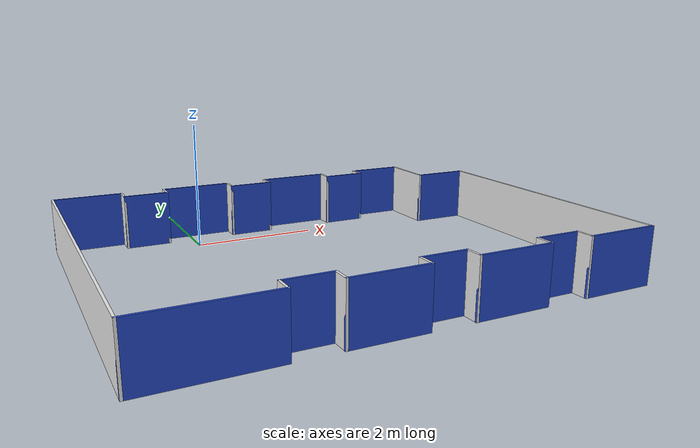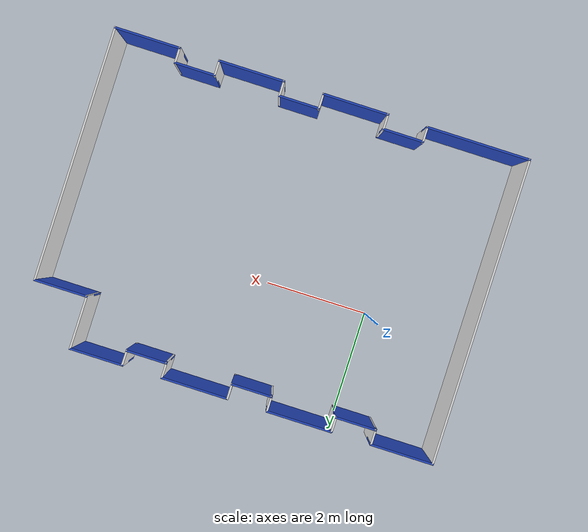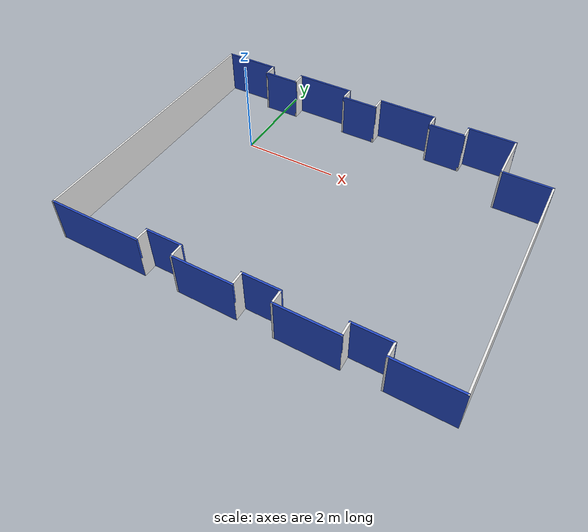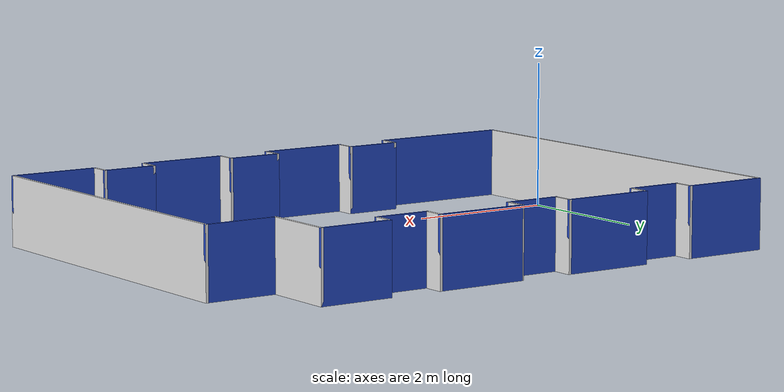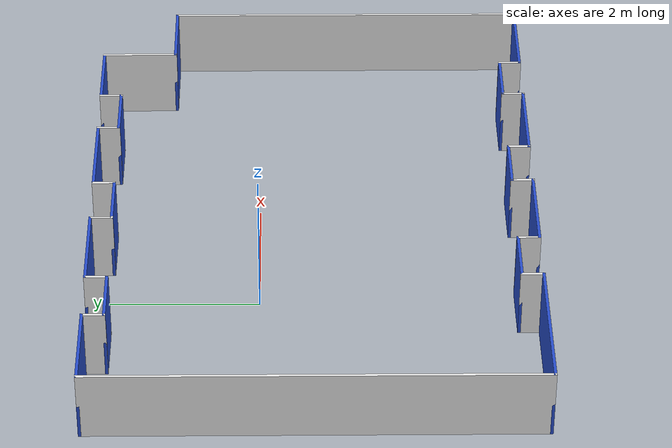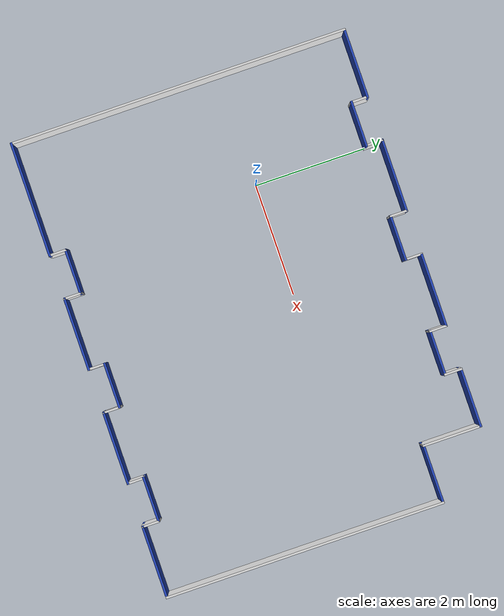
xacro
<?xml version="1.0"?>
<robot name="macroed" xmlns:xacro="http://ros.org/wiki/xacro">
  <xacro:property name="width" value="0.2" />
  <xacro:property name="wall_thickness" value="0.04" />
  <xacro:property name="wall_750_leglen" value="${0.75+wall_thickness*2}" />
  <xacro:property name="wall_250_leglen" value="${0.25+wall_thickness*2}" />
  <xacro:property name="wall_1250_leglen" value="${1.25+wall_thickness*2}" />
  <xacro:property name="wall_H_1250_leglen" value="${1.25+wall_thickness/2}" />
  <xacro:property name="wall_1000_leglen" value="${1+wall_thickness*2}" />
  <xacro:property name="wall_2000_leglen" value="${2+wall_thickness*2}" />
  <xacro:property name="wall_5000_leglen" value="${5+wall_thickness*2}" />
  <xacro:property name="wall_6000_leglen" value="${6+wall_thickness*3}" />
  <xacro:property name="pi" value="3.1415" />

  <xacro:macro name="default_inertial" params="mass">
    <inertial>
      <mass value="${mass}" />
      <inertia ixx="100.0" ixy="100.0" ixz="100.0" iyy="100.0" iyz="100.0" izz="100.0" />
    </inertial>
  </xacro:macro>

  <link name="wall_A_1250">
    <visual>
      <geometry>
        <box size="1 ${wall_1250_leglen} ${wall_thickness}"/>
      </geometry>
      <origin xyz="${wall_1250_leglen/2} 0 0" rpy="0 ${pi/2} ${pi/2}"/>
      <material name="blue"/>
    </visual>
    <collision>
      <geometry>
        <box size="1 ${wall_1250_leglen} ${wall_thickness}"/>
      </geometry>
      <origin xyz="${wall_1250_leglen/2} 0 0" rpy="0 ${pi/2} ${pi/2}"/>
    </collision>
    <xacro:default_inertial mass="10"/>
  </link>

  <link name="wall_A_750">
    <visual>
      <geometry>
        <box size="1 ${wall_750_leglen} ${wall_thickness}"/>
      </geometry>
      <origin xyz="${-wall_750_leglen/2} ${wall_thickness/2+2} 0" rpy="0 ${pi/2} ${pi/2}"/>
      <material name="blue"/>
    </visual>
    <collision>
      <geometry>
        <box size="1 ${wall_750_leglen} ${wall_thickness}"/>
      </geometry>
      <origin xyz="${-wall_750_leglen/2} ${wall_thickness/2+2} 0" rpy="0 ${pi/2} ${pi/2}"/>
    </collision>
    <xacro:default_inertial mass="10"/>
  </link>

  <link name="wall_A1_250">
    <visual>
      <geometry>
        <box size="1 ${wall_250_leglen} ${wall_thickness}"/>
      </geometry>
      <origin xyz="${-wall_thickness} 0 0" rpy="0 ${pi/2} 0"/>
      <material name="white"/>
    </visual>
    <collision>
      <geometry>
        <box size="1 ${wall_250_leglen} ${wall_thickness}"/>
      </geometry>
      <origin xyz="${-wall_thickness} 0 0" rpy="0 ${pi/2} 0"/>
    </collision>
    <xacro:default_inertial mass="10"/>
  </link>

  <link name="wall_A2_250">
    <visual>
      <geometry>
        <box size="1 ${wall_250_leglen} ${wall_thickness}"/>
      </geometry>
      <origin xyz="${-wall_thickness} 0 0" rpy="0 ${pi/2} 0"/>
      <material name="white"/>
    </visual>
    <collision>
      <geometry>
        <box size="1 ${wall_250_leglen} ${wall_thickness}"/>
      </geometry>
      <origin xyz="${-wall_thickness} 0 0" rpy="0 ${pi/2} 0"/>
    </collision>
    <xacro:default_inertial mass="10"/>
  </link>

  <joint name="wall_A_1" type="fixed">
    <parent link="wall_A_750"/>
    <child link="wall_A1_250"/>
    <origin xyz="${wall_thickness/2} ${wall_250_leglen/2+2} 0" rpy="0 0 0"/>
  </joint>

  <joint name="wall_A_2" type="fixed">
    <parent link="wall_A1_250"/>
    <child link="wall_A_1250"/>
    <origin xyz="${-wall_thickness-wall_thickness/2} ${wall_250_leglen/2-wall_thickness/2} 0" rpy="0 0 0"/>
  </joint>

  <joint name="wall_A_3" type="fixed">
    <parent link="wall_A_750"/>
    <child link="wall_A2_250"/>
    <origin xyz="${-wall_750_leglen+wall_thickness*3/2} ${wall_250_leglen/2+2} 0" rpy="0 0 0"/>
  </joint>

  <link name="wall_B1_250">
    <visual>
      <geometry>
        <box size="1 ${wall_250_leglen} ${wall_thickness}"/>
      </geometry>
      <origin xyz="${-wall_thickness} 0 0" rpy="0 ${pi/2} 0"/>
      <material name="white"/>
    </visual>
    <collision>
      <geometry>
        <box size="1 ${wall_250_leglen} ${wall_thickness}"/>
      </geometry>
      <origin xyz="${-wall_thickness} 0 0" rpy="0 ${pi/2} 0"/>
    </collision>
    <xacro:default_inertial mass="10"/>
  </link>

  <link name="wall_B2_250">
    <visual>
      <geometry>
        <box size="1 ${wall_250_leglen} ${wall_thickness}"/>
      </geometry>
      <origin xyz="${-wall_thickness} 0 0" rpy="0 ${pi/2} 0"/>
      <material name="white"/>
    </visual>
    <collision>
      <geometry>
        <box size="1 ${wall_250_leglen} ${wall_thickness}"/>
      </geometry>
      <origin xyz="${-wall_thickness} 0 0" rpy="0 ${pi/2} 0"/>
    </collision>
    <xacro:default_inertial mass="10"/>
  </link>

  <link name="wall_B_750">
    <visual>
      <geometry>
        <box size="1 ${wall_750_leglen} ${wall_thickness}"/>
      </geometry>
      <origin xyz="${-wall_750_leglen/2} ${wall_thickness/2} 0" rpy="0 ${pi/2} ${pi/2}"/>
      <material name="blue"/>
    </visual>
    <collision>
      <geometry>
        <box size="1 ${wall_750_leglen} ${wall_thickness}"/>
      </geometry>
      <origin xyz="${-wall_750_leglen/2} ${wall_thickness/2} 0" rpy="0 ${pi/2} ${pi/2}"/>
    </collision>
    <xacro:default_inertial mass="10"/>
  </link>

  <link name="wall_B_1250">
    <visual>
      <geometry>
        <box size="1 ${wall_1250_leglen} ${wall_thickness}"/>
      </geometry>
      <origin xyz="${wall_1250_leglen/2} 0 0" rpy="0 ${pi/2} ${pi/2}"/>
      <material name="blue"/>
    </visual>
    <collision>
      <geometry>
        <box size="1 ${wall_1250_leglen} ${wall_thickness}"/>
      </geometry>
      <origin xyz="${wall_1250_leglen/2} 0 0" rpy="0 ${pi/2} ${pi/2}"/>
    </collision>
    <xacro:default_inertial mass="10"/>
  </link>

  <joint name="wall_B_1" type="fixed">
    <parent link="wall_A_1250"/>
    <child link="wall_B1_250"/>
    <origin xyz="${wall_1250_leglen+wall_thickness/2} ${-wall_250_leglen/2+wall_thickness/2} 0" rpy="0 0 0"/>
  </joint>

  <joint name="wall_B_2" type="fixed">
    <parent link="wall_B1_250"/>
    <child link="wall_B_750"/>
    <origin xyz="${wall_750_leglen-wall_thickness*3/2} ${-wall_250_leglen/2} 0" rpy="0 0 0"/>
  </joint>

  <joint name="wall_B_3" type="fixed">
    <parent link="wall_B_750"/>
    <child link="wall_B2_250"/>
    <origin xyz="${wall_thickness/2} ${wall_250_leglen/2} 0" rpy="0 0 0"/>
  </joint>

  <joint name="wall_B_4" type="fixed">
    <parent link="wall_B2_250"/>
    <child link="wall_B_1250"/>
    <origin xyz="${-wall_thickness} ${wall_250_leglen/2-wall_thickness/2} 0" rpy="0 0 0"/>
  </joint>

  <link name="wall_C1_250">
    <visual>
      <geometry>
        <box size="1 ${wall_250_leglen} ${wall_thickness}"/>
      </geometry>
      <origin xyz="${-wall_thickness} 0 0" rpy="0 ${pi/2} 0"/>
      <material name="white"/>
    </visual>
    <collision>
      <geometry>
        <box size="1 ${wall_250_leglen} ${wall_thickness}"/>
      </geometry>
      <origin xyz="${-wall_thickness} 0 0" rpy="0 ${pi/2} 0"/>
    </collision>
    <xacro:default_inertial mass="10"/>
  </link>

  <link name="wall_C2_250">
    <visual>
      <geometry>
        <box size="1 ${wall_250_leglen} ${wall_thickness}"/>
      </geometry>
      <origin xyz="${-wall_thickness} 0 0" rpy="0 ${pi/2} 0"/>
      <material name="white"/>
    </visual>
    <collision>
      <geometry>
        <box size="1 ${wall_250_leglen} ${wall_thickness}"/>
      </geometry>
      <origin xyz="${-wall_thickness} 0 0" rpy="0 ${pi/2} 0"/>
    </collision>
    <xacro:default_inertial mass="10"/>
  </link>

  <link name="wall_C_750">
    <visual>
      <geometry>
        <box size="1 ${wall_750_leglen} ${wall_thickness}"/>
      </geometry>
      <origin xyz="${-wall_750_leglen/2} ${wall_thickness/2} 0" rpy="0 ${pi/2} ${pi/2}"/>
      <material name="blue"/>
    </visual>
    <collision>
      <geometry>
        <box size="1 ${wall_750_leglen} ${wall_thickness}"/>
      </geometry>
      <origin xyz="${-wall_750_leglen/2} ${wall_thickness/2} 0" rpy="0 ${pi/2} ${pi/2}"/>
    </collision>
    <xacro:default_inertial mass="10"/>
  </link>

  <link name="wall_C_1000">
    <visual>
      <geometry>
        <box size="1 ${wall_1000_leglen} ${wall_thickness}"/>
      </geometry>
      <origin xyz="${wall_1000_leglen/2} 0 0" rpy="0 ${pi/2} ${pi/2}"/>
      <material name="blue"/>
    </visual>
    <collision>
      <geometry>
        <box size="1 ${wall_1000_leglen} ${wall_thickness}"/>
      </geometry>
      <origin xyz="${wall_1000_leglen/2} 0 0" rpy="0 ${pi/2} ${pi/2}"/>
    </collision>
    <xacro:default_inertial mass="10"/>
  </link>

  <joint name="wall_C_1" type="fixed">
    <parent link="wall_B_1250"/>
    <child link="wall_C1_250"/>
    <origin xyz="${wall_1250_leglen+wall_thickness/2} ${-wall_250_leglen/2+wall_thickness/2} 0" rpy="0 0 0"/>
  </joint>

  <joint name="wall_C_2" type="fixed">
    <parent link="wall_C1_250"/>
    <child link="wall_C_750"/>
    <origin xyz="${wall_750_leglen-wall_thickness*3/2} ${-wall_250_leglen/2} 0" rpy="0 0 0"/>
  </joint>

  <joint name="wall_C_3" type="fixed">
    <parent link="wall_C_750"/>
    <child link="wall_C2_250"/>
    <origin xyz="${wall_thickness/2} ${wall_250_leglen/2} 0" rpy="0 0 0"/>
  </joint>

  <joint name="wall_C_4" type="fixed">
    <parent link="wall_C2_250"/>
    <child link="wall_C_1000"/>
    <origin xyz="${-wall_thickness-wall_thickness/2} ${wall_250_leglen/2-wall_thickness/2} 0" rpy="0 0 0"/>
  </joint>

  <link name="wall_D1_1000">
    <visual>
      <geometry>
        <box size="1 ${wall_1000_leglen} ${wall_thickness}"/>
      </geometry>
      <origin xyz="${-wall_thickness} 0 0" rpy="0 ${pi/2} 0"/>
      <material name="white"/>
    </visual>
    <collision>
      <geometry>
        <box size="1 ${wall_1000_leglen} ${wall_thickness}"/>
      </geometry>
      <origin xyz="${-wall_thickness} 0 0" rpy="0 ${pi/2} 0"/>
    </collision>
    <xacro:default_inertial mass="10"/>
  </link>

  <link name="wall_D2_1000">
    <visual>
      <geometry>
        <box size="1 ${wall_1000_leglen} ${wall_thickness}"/>
      </geometry>
      <origin xyz="${-wall_1000_leglen/2} ${wall_thickness/2} 0" rpy="0 ${pi/2} ${pi/2}"/>
      <material name="blue"/>
    </visual>
    <collision>
      <geometry>
        <box size="1 ${wall_1000_leglen} ${wall_thickness}"/>
      </geometry>
      <origin xyz="${-wall_1000_leglen/2} ${wall_thickness/2} 0" rpy="0 ${pi/2} ${pi/2}"/>
    </collision>
    <xacro:default_inertial mass="10"/>
  </link>

  <link name="wall_D_1250">
    <visual>
      <geometry>
        <box size="1 ${wall_1250_leglen} ${wall_thickness}"/>
      </geometry>
      <origin xyz="${-wall_1250_leglen/2} ${wall_thickness/2} 0" rpy="0 ${pi/2} ${pi/2}"/>
      <material name="blue"/>
    </visual>
    <collision>
      <geometry>
        <box size="1 ${wall_1250_leglen} ${wall_thickness}"/>
      </geometry>
      <origin xyz="${-wall_1250_leglen/2} ${wall_thickness/2} 0" rpy="0 ${pi/2} ${pi/2}"/>
    </collision>
    <xacro:default_inertial mass="10"/>
  </link>

  <link name="wall_D_5000">
    <visual>
      <geometry>
        <box size="1 ${wall_5000_leglen} ${wall_thickness}"/>
      </geometry>
      <origin xyz="${-wall_thickness} 0 0" rpy="0 ${pi/2} 0"/>
      <material name="white"/>
    </visual>
    <collision>
      <geometry>
        <box size="1 ${wall_5000_leglen} ${wall_thickness}"/>
      </geometry>
      <origin xyz="${-wall_thickness} 0 0" rpy="0 ${pi/2} 0"/>
    </collision>
    <xacro:default_inertial mass="10"/>
  </link>

  <joint name="wall_D_1" type="fixed">
    <parent link="wall_C_1000"/>
    <child link="wall_D1_1000"/>
    <origin xyz="${wall_1000_leglen+wall_thickness/2} ${-wall_1000_leglen/2+wall_thickness/2} 0" rpy="0 0 0"/>
  </joint>

  <joint name="wall_D_2" type="fixed">
    <parent link="wall_D1_1000"/>
    <child link="wall_D2_1000"/>
    <origin xyz="${wall_1000_leglen-wall_thickness*3/2} ${-wall_1000_leglen/2} 0" rpy="0 0 0"/>
  </joint>

  <joint name="wall_D_3" type="fixed">
    <parent link="wall_D2_1000"/>
    <child link="wall_D_5000"/>
    <origin xyz="${wall_thickness/2} ${-wall_5000_leglen/2+wall_thickness} 0" rpy="0 0 0"/>
  </joint>

  <joint name="wall_D_4" type="fixed">
    <parent link="wall_D_5000"/>
    <child link="wall_D_1250"/>
    <origin xyz="${-wall_thickness/2} ${-wall_5000_leglen/2} 0" rpy="0 0 0"/>
  </joint>

  <link name="wall_E1_250">
    <visual>
      <geometry>
        <box size="1 ${wall_250_leglen} ${wall_thickness}"/>
      </geometry>
      <origin xyz="${-wall_thickness} 0 0" rpy="0 ${pi/2} 0"/>
      <material name="white"/>
    </visual>
    <collision>
      <geometry>
        <box size="1 ${wall_250_leglen} ${wall_thickness}"/>
      </geometry>
      <origin xyz="${-wall_thickness} 0 0" rpy="0 ${pi/2} 0"/>
    </collision>
    <xacro:default_inertial mass="10"/>
  </link>

  <link name="wall_E2_250">
    <visual>
      <geometry>
        <box size="1 ${wall_250_leglen} ${wall_thickness}"/>
      </geometry>
      <origin xyz="${-wall_thickness} 0 0" rpy="0 ${pi/2} 0"/>
      <material name="white"/>
    </visual>
    <collision>
      <geometry>
        <box size="1 ${wall_250_leglen} ${wall_thickness}"/>
      </geometry>
      <origin xyz="${-wall_thickness} 0 0" rpy="0 ${pi/2} 0"/>
    </collision>
    <xacro:default_inertial mass="10"/>
  </link>

  <link name="wall_E_1250">
    <visual>
      <geometry>
        <box size="1 ${wall_1250_leglen} ${wall_thickness}"/>
      </geometry>
      <origin xyz="${-wall_1250_leglen/2} ${wall_thickness/2} 0" rpy="0 ${pi/2} ${pi/2}"/>
      <material name="blue"/>
    </visual>
    <collision>
      <geometry>
        <box size="1 ${wall_1250_leglen} ${wall_thickness}"/>
      </geometry>
      <origin xyz="${-wall_1250_leglen/2} ${wall_thickness/2} 0" rpy="0 ${pi/2} ${pi/2}"/>
    </collision>
    <xacro:default_inertial mass="10"/>
  </link>

  <link name="wall_E_750">
    <visual>
      <geometry>
        <box size="1 ${wall_750_leglen} ${wall_thickness}"/>
      </geometry>
      <origin xyz="${-wall_750_leglen/2} ${wall_thickness/2} 0" rpy="0 ${pi/2} ${pi/2}"/>
      <material name="blue"/>
    </visual>
    <collision>
      <geometry>
        <box size="1 ${wall_750_leglen} ${wall_thickness}"/>
      </geometry>
      <origin xyz="${-wall_750_leglen/2} ${wall_thickness/2} 0" rpy="0 ${pi/2} ${pi/2}"/>
    </collision>
    <xacro:default_inertial mass="10"/>
  </link>

  <joint name="wall_E_1" type="fixed">
    <parent link="wall_D_1250"/>
    <child link="wall_E1_250"/>
    <origin xyz="${-wall_1250_leglen+wall_thickness*3/2} ${wall_250_leglen/2} 0" rpy="0 0 0"/>
  </joint>

  <joint name="wall_E_2" type="fixed">
    <parent link="wall_E1_250"/>
    <child link="wall_E_750"/>
    <origin xyz="${-wall_thickness/2} ${wall_250_leglen/2-wall_thickness} 0" rpy="0 0 0"/>
  </joint>

  <joint name="wall_E_3" type="fixed">
    <parent link="wall_E_750"/>
    <child link="wall_E2_250"/>
    <origin xyz="${-wall_750_leglen+wall_thickness*3/2} ${-wall_250_leglen/2+wall_thickness} 0" rpy="0 0 0"/>
  </joint>

  <joint name="wall_E_4" type="fixed">
    <parent link="wall_E2_250"/>
    <child link="wall_E_1250"/>
    <origin xyz="${-wall_thickness+wall_thickness/2} ${-wall_250_leglen/2} 0" rpy="0 0 0"/>
  </joint>

  <link name="wall_F1_250">
    <visual>
      <geometry>
        <box size="1 ${wall_250_leglen} ${wall_thickness}"/>
      </geometry>
      <origin xyz="${-wall_thickness} 0 0" rpy="0 ${pi/2} 0"/>
      <material name="white"/>
    </visual>
    <collision>
      <geometry>
        <box size="1 ${wall_250_leglen} ${wall_thickness}"/>
      </geometry>
      <origin xyz="${-wall_thickness} 0 0" rpy="0 ${pi/2} 0"/>
    </collision>
    <xacro:default_inertial mass="10"/>
  </link>

  <link name="wall_F2_250">
    <visual>
      <geometry>
        <box size="1 ${wall_250_leglen} ${wall_thickness}"/>
      </geometry>
      <origin xyz="${-wall_thickness} 0 0" rpy="0 ${pi/2} 0"/>
      <material name="white"/>
    </visual>
    <collision>
      <geometry>
        <box size="1 ${wall_250_leglen} ${wall_thickness}"/>
      </geometry>
      <origin xyz="${-wall_thickness} 0 0" rpy="0 ${pi/2} 0"/>
    </collision>
    <xacro:default_inertial mass="10"/>
  </link>

  <link name="wall_F_1250">
    <visual>
      <geometry>
        <box size="1 ${wall_1250_leglen} ${wall_thickness}"/>
      </geometry>
      <origin xyz="${-wall_1250_leglen/2} ${wall_thickness/2} 0" rpy="0 ${pi/2} ${pi/2}"/>
      <material name="blue"/>
    </visual>
    <collision>
      <geometry>
        <box size="1 ${wall_1250_leglen} ${wall_thickness}"/>
      </geometry>
      <origin xyz="${-wall_1250_leglen/2} ${wall_thickness/2} 0" rpy="0 ${pi/2} ${pi/2}"/>
    </collision>
    <xacro:default_inertial mass="10"/>
  </link>

  <link name="wall_F_750">
    <visual>
      <geometry>
        <box size="1 ${wall_750_leglen} ${wall_thickness}"/>
      </geometry>
      <origin xyz="${-wall_750_leglen/2} ${wall_thickness/2} 0" rpy="0 ${pi/2} ${pi/2}"/>
      <material name="blue"/>
    </visual>
    <collision>
      <geometry>
        <box size="1 ${wall_750_leglen} ${wall_thickness}"/>
      </geometry>
      <origin xyz="${-wall_750_leglen/2} ${wall_thickness/2} 0" rpy="0 ${pi/2} ${pi/2}"/>
    </collision>
    <xacro:default_inertial mass="10"/>
  </link>

  <joint name="wall_F_1" type="fixed">
    <parent link="wall_E_1250"/>
    <child link="wall_F1_250"/>
    <origin xyz="${-wall_1250_leglen+wall_thickness*3/2} ${wall_250_leglen/2} 0" rpy="0 0 0"/>
  </joint>

  <joint name="wall_F_2" type="fixed">
    <parent link="wall_F1_250"/>
    <child link="wall_F_750"/>
    <origin xyz="${-wall_thickness/2} ${wall_250_leglen/2-wall_thickness} 0" rpy="0 0 0"/>
  </joint>

  <joint name="wall_F_3" type="fixed">
    <parent link="wall_F_750"/>
    <child link="wall_F2_250"/>
    <origin xyz="${-wall_750_leglen+wall_thickness*3/2} ${-wall_250_leglen/2+wall_thickness} 0" rpy="0 0 0"/>
  </joint>

  <joint name="wall_F_4" type="fixed">
    <parent link="wall_F2_250"/>
    <child link="wall_F_1250"/>
    <origin xyz="${-wall_thickness+wall_thickness/2} ${-wall_250_leglen/2} 0" rpy="0 0 0"/>
  </joint>

  <link name="wall_G1_250">
    <visual>
      <geometry>
        <box size="1 ${wall_250_leglen} ${wall_thickness}"/>
      </geometry>
      <origin xyz="${-wall_thickness} 0 0" rpy="0 ${pi/2} 0"/>
      <material name="white"/>
    </visual>
    <collision>
      <geometry>
        <box size="1 ${wall_250_leglen} ${wall_thickness}"/>
      </geometry>
      <origin xyz="${-wall_thickness} 0 0" rpy="0 ${pi/2} 0"/>
    </collision>
    <xacro:default_inertial mass="10"/>
  </link>

  <link name="wall_G2_250">
    <visual>
      <geometry>
        <box size="1 ${wall_250_leglen} ${wall_thickness}"/>
      </geometry>
      <origin xyz="${-wall_thickness} 0 0" rpy="0 ${pi/2} 0"/>
      <material name="white"/>
    </visual>
    <collision>
      <geometry>
        <box size="1 ${wall_250_leglen} ${wall_thickness}"/>
      </geometry>
      <origin xyz="${-wall_thickness} 0 0" rpy="0 ${pi/2} 0"/>
    </collision>
    <xacro:default_inertial mass="10"/>
  </link>

  <link name="wall_G_2000">
    <visual>
      <geometry>
        <box size="1 ${wall_2000_leglen} ${wall_thickness}"/>
      </geometry>
      <origin xyz="${-wall_2000_leglen/2} ${wall_thickness/2} 0" rpy="0 ${pi/2} ${pi/2}"/>
      <material name="blue"/>
    </visual>
    <collision>
      <geometry>
        <box size="1 ${wall_2000_leglen} ${wall_thickness}"/>
      </geometry>
      <origin xyz="${-wall_2000_leglen/2} ${wall_thickness/2} 0" rpy="0 ${pi/2} ${pi/2}"/>
    </collision>
    <xacro:default_inertial mass="10"/>
  </link>

  <link name="wall_G_750">
    <visual>
      <geometry>
        <box size="1 ${wall_750_leglen} ${wall_thickness}"/>
      </geometry>
      <origin xyz="${-wall_750_leglen/2} ${wall_thickness/2} 0" rpy="0 ${pi/2} ${pi/2}"/>
      <material name="blue"/>
    </visual>
    <collision>
      <geometry>
        <box size="1 ${wall_750_leglen} ${wall_thickness}"/>
      </geometry>
      <origin xyz="${-wall_750_leglen/2} ${wall_thickness/2} 0" rpy="0 ${pi/2} ${pi/2}"/>
    </collision>
    <xacro:default_inertial mass="10"/>
  </link>

  <joint name="wall_G_1" type="fixed">
    <parent link="wall_F_1250"/>
    <child link="wall_G1_250"/>
    <origin xyz="${-wall_1250_leglen+wall_thickness*3/2} ${wall_250_leglen/2} 0" rpy="0 0 0"/>
  </joint>

  <joint name="wall_G_2" type="fixed">
    <parent link="wall_G1_250"/>
    <child link="wall_G_750"/>
    <origin xyz="${-wall_thickness/2} ${wall_250_leglen/2-wall_thickness} 0" rpy="0 0 0"/>
  </joint>

  <joint name="wall_G_3" type="fixed">
    <parent link="wall_G_750"/>
    <child link="wall_G2_250"/>
    <origin xyz="${-wall_750_leglen+wall_thickness*3/2} ${-wall_250_leglen/2+wall_thickness} 0" rpy="0 0 0"/>
  </joint>

  <joint name="wall_G_4" type="fixed">
    <parent link="wall_G2_250"/>
    <child link="wall_G_2000"/>
    <origin xyz="${-wall_thickness+wall_thickness/2} ${-wall_250_leglen/2} 0" rpy="0 0 0"/>
  </joint>

  <link name="wall_H_6000">
    <visual>
      <geometry>
        <box size="1 ${wall_6000_leglen} ${wall_thickness}"/>
      </geometry>
      <origin xyz="${-wall_thickness} 0 0" rpy="0 ${pi/2} 0"/>
      <material name="white"/>
    </visual>
    <collision>
      <geometry>
        <box size="1 ${wall_6000_leglen} ${wall_thickness}"/>
      </geometry>
      <origin xyz="${-wall_thickness} 0 0" rpy="0 ${pi/2} 0"/>
    </collision>
    <xacro:default_inertial mass="10"/>
  </link>

  <link name="wall_H_1250">
    <visual>
      <geometry>
        <box size="1 ${wall_H_1250_leglen} ${wall_thickness}"/>
      </geometry>
      <origin xyz="${-wall_H_1250_leglen/2} ${wall_thickness/2} 0" rpy="0 ${pi/2} ${pi/2}"/>
      <material name="blue"/>
    </visual>
    <collision>
      <geometry>
        <box size="1 ${wall_H_1250_leglen} ${wall_thickness}"/>
      </geometry>
      <origin xyz="${-wall_H_1250_leglen/2} ${wall_thickness/2} 0" rpy="0 ${pi/2} ${pi/2}"/>
    </collision>
    <xacro:default_inertial mass="10"/>
  </link>

  <joint name="wall_H_1" type="fixed">
    <parent link="wall_G_2000"/>
    <child link="wall_H_6000"/>
    <origin xyz="${-wall_2000_leglen+wall_thickness*3/2} ${wall_6000_leglen/2} 0" rpy="0 0 0"/>
  </joint>

  <joint name="wall_H_2" type="fixed">
    <parent link="wall_H_6000"/>
    <child link="wall_H_1250"/>
    <origin xyz="${wall_H_1250_leglen-wall_thickness*3/2} ${wall_6000_leglen/2-wall_thickness} 0" rpy="0 0 0"/>
  </joint>

</robot>
